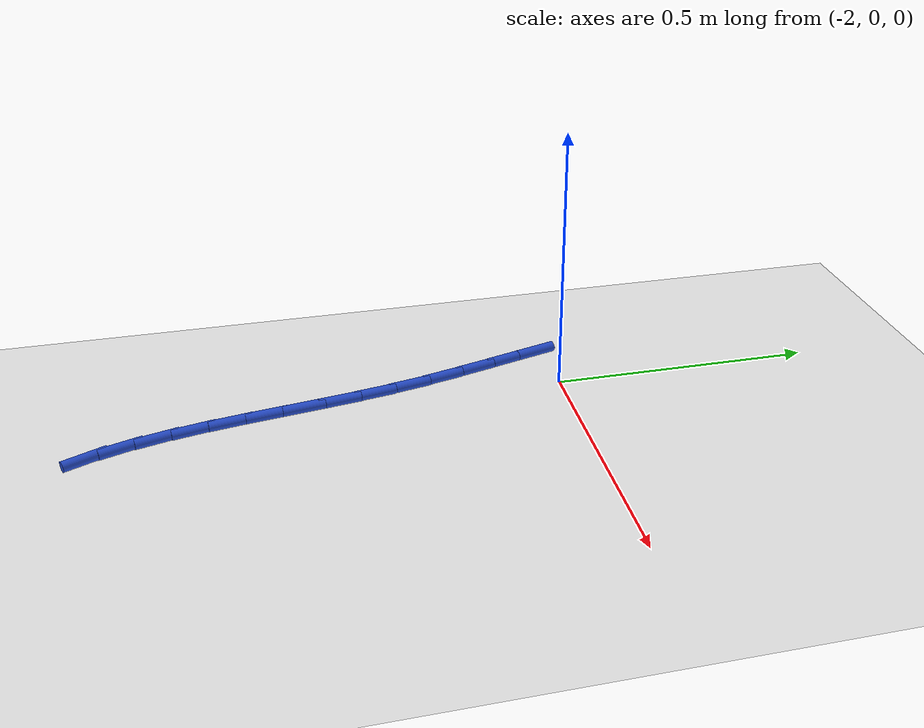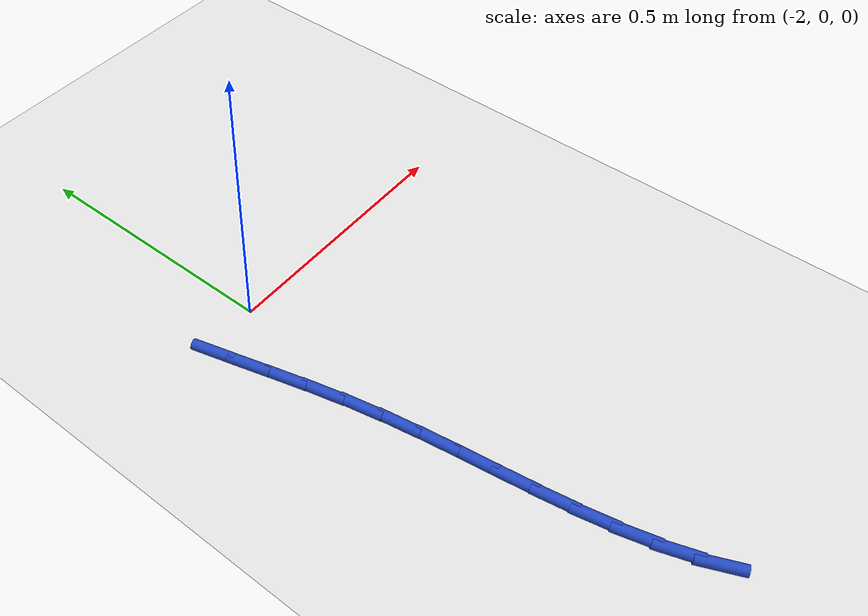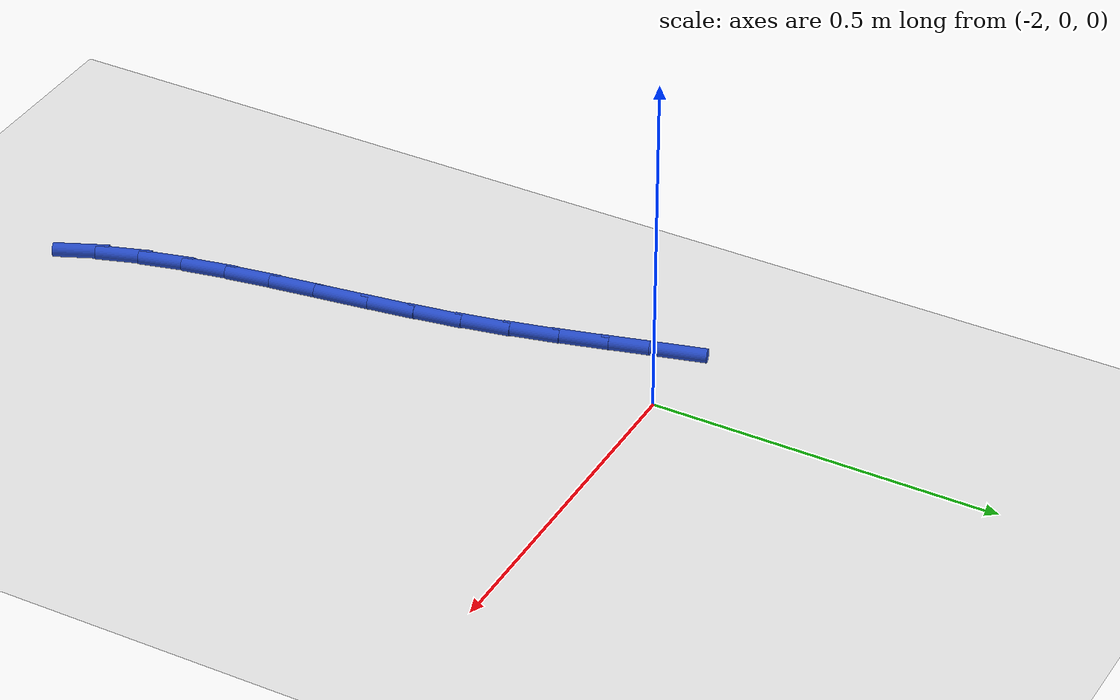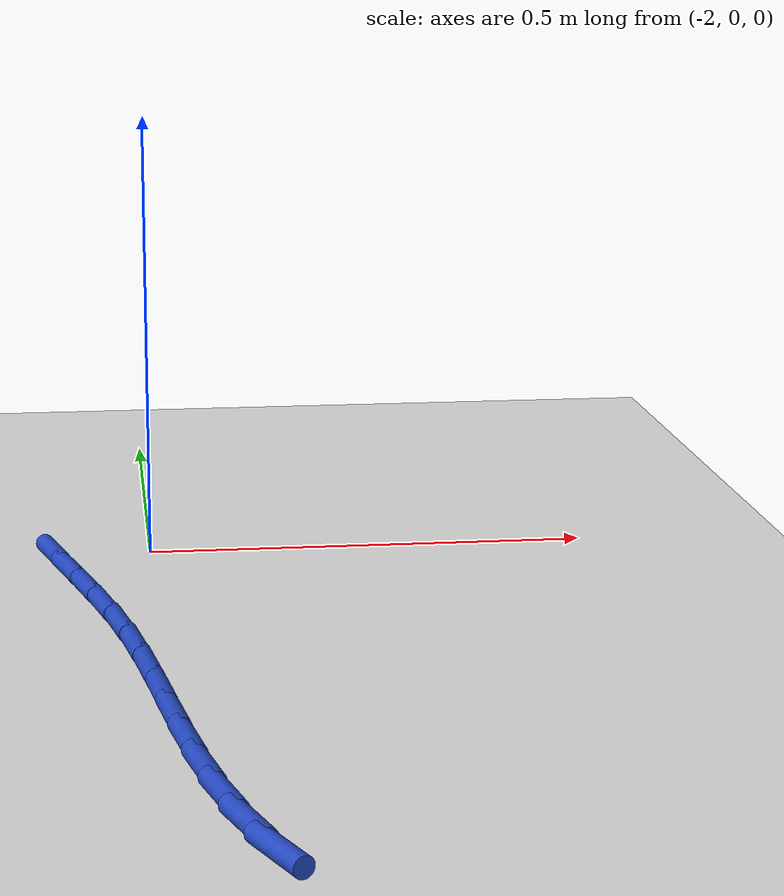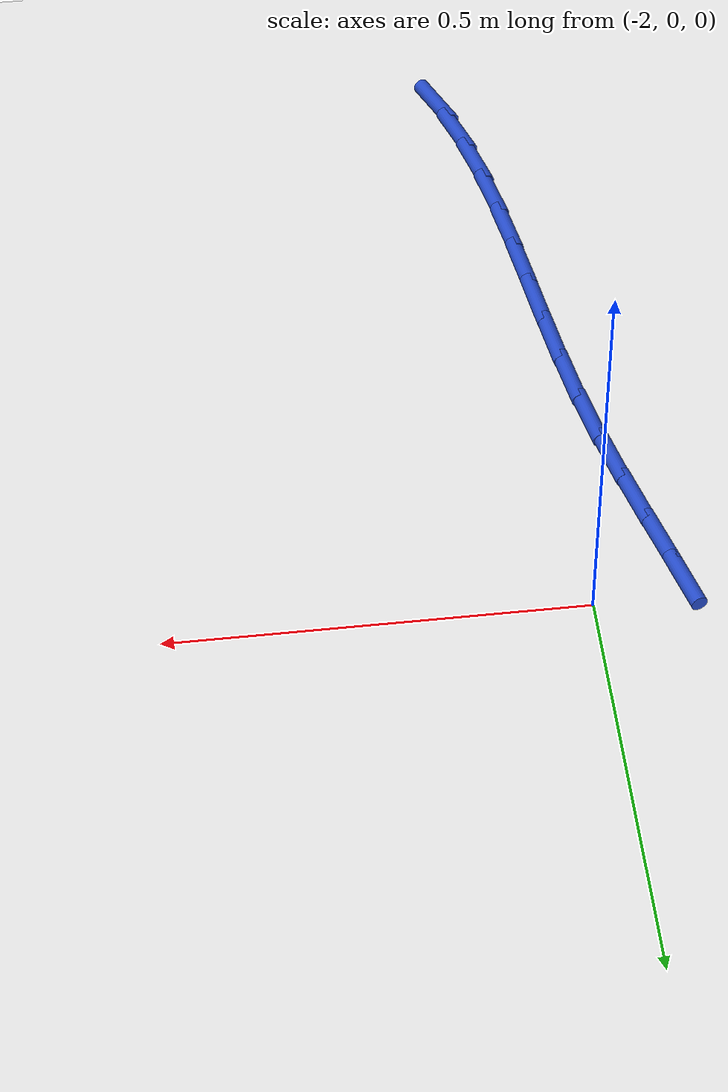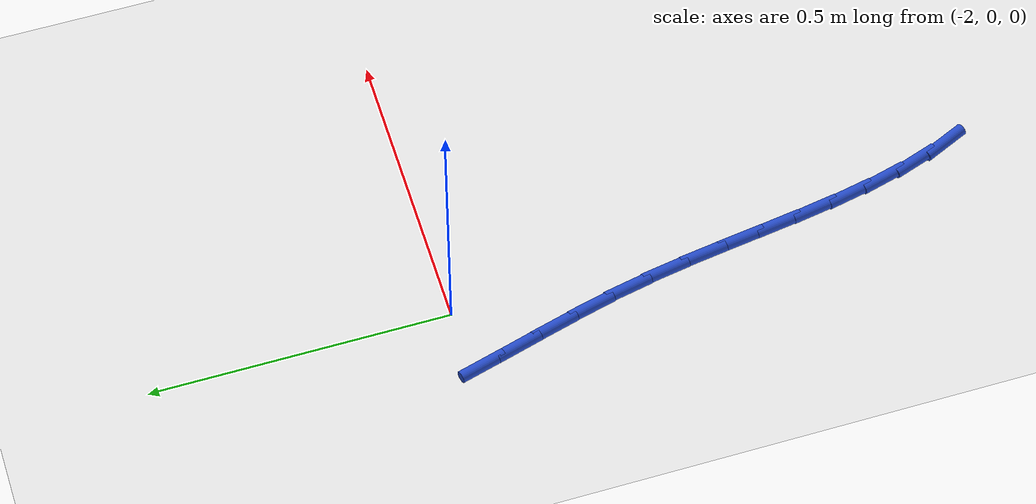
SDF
<sdf version="1.6">
 <world name="default">
  <model name="ground_plane">
   <static>1</static>
   <link name="link">
    <collision name="collision">
     <geometry><plane><normal>0 0 1</normal><size>100 100</size></plane></geometry>
     <surface><friction><ode><mu>100</mu><mu2>50</mu2></ode></friction></surface>
    </collision>
    <visual name="visual">
     <cast_shadows>0</cast_shadows>
     <geometry><plane><normal>0 0 1</normal><size>100 100</size></plane></geometry>
     <material>
      <script><uri>file://media/materials/scripts/gazebo.material</uri><name>Gazebo/WhiteGlow</name></script>
     </material>
    </visual>
   </link>
  </model>
  <model name="line">
   <link name="link_55">
    <pose>-2.1102485789922865 -0.01865794386717446 0.01 0 1.57 -1.3029048349516053</pose>
    <collision name="collision">
     <geometry><cylinder><radius>0.01</radius><length>0.08</length></cylinder></geometry>
    </collision>
    <visual name="visual">
     <material>
      <script><name>Gazebo/Blue</name><uri>file://media/materials/scripts/gazebo.material</uri></script>
     </material>
     <geometry><cylinder><radius>0.01</radius><length>0.08</length></cylinder></geometry>
    </visual>
   </link>
   <link name="link_56">
    <pose>-2.0923290167728803 -0.08394119034671081 0.01 0 1.57 -1.2992709926393287</pose>
    <collision name="collision">
     <geometry><cylinder><radius>0.01</radius><length>0.08</length></cylinder></geometry>
    </collision>
    <visual name="visual">
     <material>
      <script><name>Gazebo/Blue</name><uri>file://media/materials/scripts/gazebo.material</uri></script>
     </material>
     <geometry><cylinder><radius>0.01</radius><length>0.08</length></cylinder></geometry>
    </visual>
   </link>
   <link name="link_57">
    <pose>-2.073942745808892 -0.1499835935788743 0.01 0 1.57 -1.3098859982632747</pose>
    <collision name="collision">
     <geometry><cylinder><radius>0.01</radius><length>0.08</length></cylinder></geometry>
    </collision>
    <visual name="visual">
     <material>
      <script><name>Gazebo/Blue</name><uri>file://media/materials/scripts/gazebo.material</uri></script>
     </material>
     <geometry><cylinder><radius>0.01</radius><length>0.08</length></cylinder></geometry>
    </visual>
   </link>
   <link name="link_58">
    <pose>-2.0561357189238003 -0.21667744536832184 0.01 0 1.57 -1.334621325198314</pose>
    <collision name="collision">
     <geometry><cylinder><radius>0.01</radius><length>0.08</length></cylinder></geometry>
    </collision>
    <visual name="visual">
     <material>
      <script><name>Gazebo/Blue</name><uri>file://media/materials/scripts/gazebo.material</uri></script>
     </material>
     <geometry><cylinder><radius>0.01</radius><length>0.08</length></cylinder></geometry>
    </visual>
   </link>
   <link name="link_59">
    <pose>-2.039953888941082 -0.28391503751971353 0.01 0 1.57 -1.3718984006933714</pose>
    <collision name="collision">
     <geometry><cylinder><radius>0.01</radius><length>0.08</length></cylinder></geometry>
    </collision>
    <visual name="visual">
     <material>
      <script><name>Gazebo/Blue</name><uri>file://media/materials/scripts/gazebo.material</uri></script>
     </material>
     <geometry><cylinder><radius>0.01</radius><length>0.08</length></cylinder></geometry>
    </visual>
   </link>
   <link name="link_60">
    <pose>-2.026316916004981 -0.3515711924550658 0.01 0 1.57 -1.405060124332364</pose>
    <collision name="collision">
     <geometry><cylinder><radius>0.01</radius><length>0.08</length></cylinder></geometry>
    </collision>
    <visual name="visual">
     <material>
      <script><name>Gazebo/Blue</name><uri>file://media/materials/scripts/gazebo.material</uri></script>
     </material>
     <geometry><cylinder><radius>0.01</radius><length>0.08</length></cylinder></geometry>
    </visual>
   </link>
   <link name="link_61">
    <pose>-2.0149779479554404 -0.41935937526418776 0.01 0 1.57 -1.4250027162941976</pose>
    <collision name="collision">
     <geometry><cylinder><radius>0.01</radius><length>0.08</length></cylinder></geometry>
    </collision>
    <visual name="visual">
     <material>
      <script><name>Gazebo/Blue</name><uri>file://media/materials/scripts/gazebo.material</uri></script>
     </material>
     <geometry><cylinder><radius>0.01</radius><length>0.08</length></cylinder></geometry>
    </visual>
   </link>
   <link name="link_62">
    <pose>-2.0050597304712547 -0.4869058509185773 0.01 0 1.57 -1.4315441339579908</pose>
    <collision name="collision">
     <geometry><cylinder><radius>0.01</radius><length>0.08</length></cylinder></geometry>
    </collision>
    <visual name="visual">
     <material>
      <script><name>Gazebo/Blue</name><uri>file://media/materials/scripts/gazebo.material</uri></script>
     </material>
     <geometry><cylinder><radius>0.01</radius><length>0.08</length></cylinder></geometry>
    </visual>
   </link>
   <link name="link_63">
    <pose>-1.9956788420748357 -0.5538360313203784 0.01 0 1.57 -1.4243383892045856</pose>
    <collision name="collision">
     <geometry><cylinder><radius>0.01</radius><length>0.08</length></cylinder></geometry>
    </collision>
    <visual name="visual">
     <material>
      <script><name>Gazebo/Blue</name><uri>file://media/materials/scripts/gazebo.material</uri></script>
     </material>
     <geometry><cylinder><radius>0.01</radius><length>0.08</length></cylinder></geometry>
    </visual>
   </link>
   <link name="link_64">
    <pose>-1.9859518612885945 -0.6197753283717322 0.01 0 1.57 -1.4027230996548736</pose>
    <collision name="collision">
     <geometry><cylinder><radius>0.01</radius><length>0.08</length></cylinder></geometry>
    </collision>
    <visual name="visual">
     <material>
      <script><name>Gazebo/Blue</name><uri>file://media/materials/scripts/gazebo.material</uri></script>
     </material>
     <geometry><cylinder><radius>0.01</radius><length>0.08</length></cylinder></geometry>
    </visual>
   </link>
   <link name="link_65">
    <pose>-1.9749953666349427 -0.684349153974782 0.01 0 1.57 -1.3657203248317633</pose>
    <collision name="collision">
     <geometry><cylinder><radius>0.01</radius><length>0.08</length></cylinder></geometry>
    </collision>
    <visual name="visual">
     <material>
      <script><name>Gazebo/Blue</name><uri>file://media/materials/scripts/gazebo.material</uri></script>
     </material>
     <geometry><cylinder><radius>0.01</radius><length>0.08</length></cylinder></geometry>
    </visual>
   </link>
   <link name="link_66">
    <pose>-1.9619259366362911 -0.7471829200316713 0.01 0 1.57 -1.3121319578313733</pose>
    <collision name="collision">
     <geometry><cylinder><radius>0.01</radius><length>0.08</length></cylinder></geometry>
    </collision>
    <visual name="visual">
     <material>
      <script><name>Gazebo/Blue</name><uri>file://media/materials/scripts/gazebo.material</uri></script>
     </material>
     <geometry><cylinder><radius>0.01</radius><length>0.08</length></cylinder></geometry>
    </visual>
   </link>
   <link name="link_67">
    <pose>-1.9458601498150516 -0.807902038444541 0.01 0 1.57 -1.2407904512484176</pose>
    <collision name="collision">
     <geometry><cylinder><radius>0.01</radius><length>0.08</length></cylinder></geometry>
    </collision>
    <visual name="visual">
     <material>
      <script><name>Gazebo/Blue</name><uri>file://media/materials/scripts/gazebo.material</uri></script>
     </material>
     <geometry><cylinder><radius>0.01</radius><length>0.08</length></cylinder></geometry>
    </visual>
   </link>
   <link name="link_68">
    <pose>-1.9259145846936334 -0.8661319211155347 0.01 0 1.57 -1.1510402559169342</pose>
    <collision name="collision">
     <geometry><cylinder><radius>0.01</radius><length>0.08</length></cylinder></geometry>
    </collision>
    <visual name="visual">
     <material>
      <script><name>Gazebo/Blue</name><uri>file://media/materials/scripts/gazebo.material</uri></script>
     </material>
     <geometry><cylinder><radius>0.01</radius><length>0.08</length></cylinder></geometry>
    </visual>
   </link>
  </model>
 </world>
</sdf>
